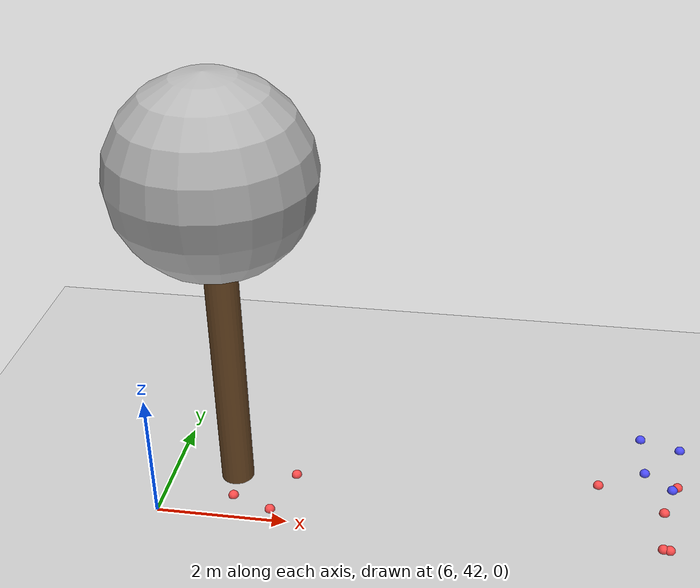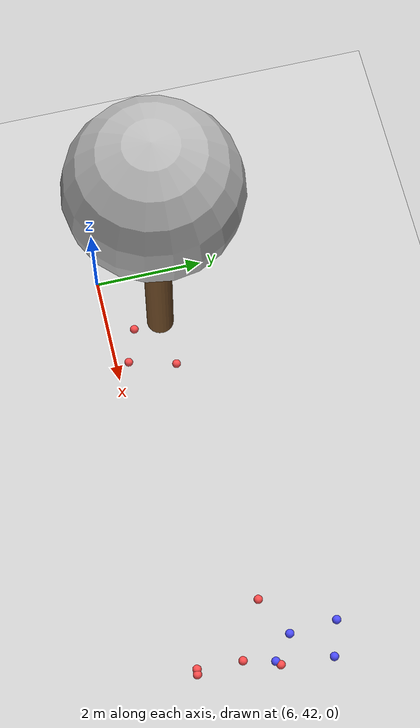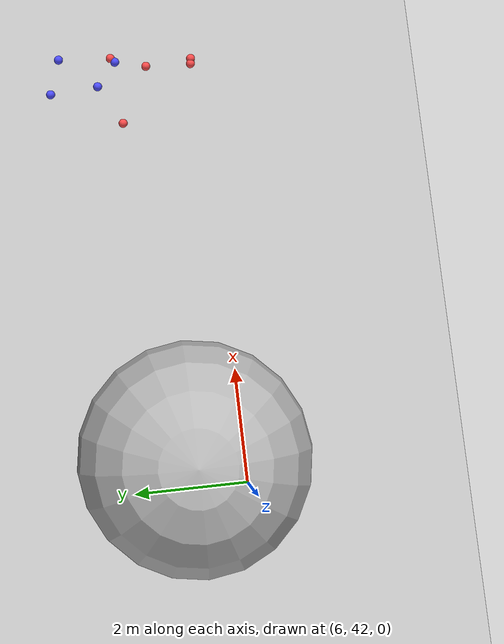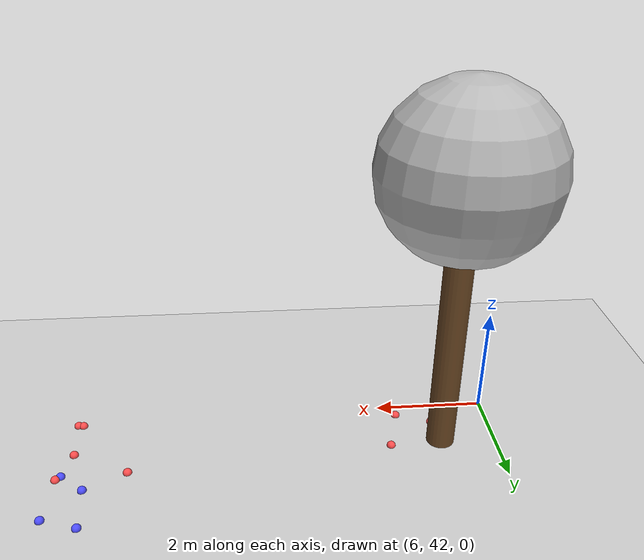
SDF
<sdf version="1.7">
 <world name="default">
  <model name="ground_plane">
   <static>1</static>
   <link name="link">
    <collision name="collision">
     <geometry><plane><normal>0 0 1</normal><size>100 100</size></plane></geometry>
     <surface>
      <contact><collide_bitmask>65535</collide_bitmask></contact>
      <friction><ode><mu>100</mu><mu2>50</mu2></ode></friction>
     </surface>
    </collision>
    <visual name="visual">
     <cast_shadows>0</cast_shadows>
     <geometry><plane><normal>0 0 1</normal><size>100 100</size></plane></geometry>
     <material>
      <script><uri>file://media/materials/scripts/gazebo.material</uri><name>Gazebo/Grey</name></script>
     </material>
    </visual>
   </link>
  </model>
  <model name="tree_simple_9">
   <static>1</static>
   <link name="link">
    <pose>0 0 0.1 0 -0 0</pose>
    <inertial>
     <mass>666</mass>
     <inertia>
      <ixx>0.0861167</ixx>
      <ixy>0</ixy>
      <ixz>0</ixz>
      <iyy>0.0861167</iyy>
      <iyz>0</iyz>
      <izz>0.0861167</izz>
     </inertia>
    </inertial>
    <collision name="collision_trunk">
     <pose>0 0 2 0 -0 0</pose>
     <geometry><cylinder><radius>0.25</radius><length>4</length></cylinder></geometry>
     <surface>
      <contact>
       <poissons_ratio>0.347</poissons_ratio>
       <elastic_modulus>8.8e+09</elastic_modulus>
       <ode><kp>100000</kp><kd>100</kd><max_vel>100</max_vel><min_depth>0.001</min_depth></ode>
      </contact>
      <friction>
       <torsional>
        <coefficient>1</coefficient>
        <use_patch_radius>0</use_patch_radius>
        <surface_radius>0.01</surface_radius>
       </torsional>
      </friction>
     </surface>
    </collision>
    <collision name="collision_treetop">
     <pose>0 0 5.2 0 -0 0</pose>
     <geometry><sphere><radius>1.5</radius></sphere></geometry>
     <surface>
      <contact>
       <poissons_ratio>0.347</poissons_ratio>
       <elastic_modulus>8.8e+09</elastic_modulus>
       <ode><kp>100000</kp><kd>100</kd><max_vel>100</max_vel><min_depth>0.001</min_depth></ode>
      </contact>
      <friction>
       <torsional>
        <coefficient>1</coefficient>
        <use_patch_radius>0</use_patch_radius>
        <surface_radius>0.01</surface_radius>
       </torsional>
      </friction>
     </surface>
    </collision>
    <visual name="trunk">
     <pose>0 0 2 0 -0 0</pose>
     <geometry><cylinder><radius>0.25</radius><length>4</length></cylinder></geometry>
     <material>
      <script>
       <uri>model://tree_simple/scripts</uri>
       <uri>model://tree_simple/materials/textures</uri>
       <name>TreeSimple/Trunk</name>
      </script>
     </material>
    </visual>
    <visual name="treetop">
     <pose>0 0 5.2 0 -0 0</pose>
     <geometry><sphere><radius>1.5</radius></sphere></geometry>
     <material>
      <script>
       <uri>model://tree_simple/scripts</uri>
       <uri>model://tree_simple/materials/textures</uri>
       <name>TreeSimple/Treetop</name>
      </script>
     </material>
    </visual>
   </link>
   <pose>7 43 -0.1 0 -0 0</pose>
  </model>
  <model name="seed_blue_22">
   <link name="link">
    <inertial>
     <mass>1</mass>
     <inertia><ixx>0.1</ixx><ixy>0</ixy><ixz>0</ixz><iyy>0.1</iyy><iyz>0</iyz><izz>0.1</izz></inertia>
    </inertial>
    <visual name="visual">
     <geometry><sphere><radius>0.08</radius></sphere></geometry>
     <material>
      <script><name>Gazebo/Grey</name><uri>file://media/materials/scripts/gazebo.material</uri></script>
      <shader type="pixel"><normal_map>__default__</normal_map></shader>
      <ambient>0.3 0.3 1 1</ambient>
      <diffuse>0.7 0.7 0.7 1</diffuse>
      <specular>0.01 0.01 0.01 1</specular>
      <emissive>0 0 0 1</emissive>
     </material>
    </visual>
    <collision name="collision">
     <geometry><sphere><radius>0.0005</radius></sphere></geometry>
     <surface>
      <friction>
       <ode><mu>1</mu><mu2>1</mu2><fdir1>0 0 0</fdir1><slip1>0</slip1><slip2>0</slip2></ode>
       <torsional>
        <coefficient>1</coefficient>
        <patch_radius>0</patch_radius>
        <surface_radius>0</surface_radius>
        <use_patch_radius>1</use_patch_radius>
        <ode><slip>0</slip></ode>
       </torsional>
      </friction>
      <bounce><restitution_coefficient>0</restitution_coefficient><threshold>1e+06</threshold></bounce>
      <contact>
       <collide_without_contact>0</collide_without_contact>
       <collide_without_contact_bitmask>1</collide_without_contact_bitmask>
       <collide_bitmask>1</collide_bitmask>
       <ode>
        <soft_cfm>0</soft_cfm>
        <soft_erp>0.2</soft_erp>
        <kp>1e+13</kp>
        <kd>1</kd>
        <max_vel>0.01</max_vel>
        <min_depth>0</min_depth>
       </ode>
       <bullet>
        <split_impulse>1</split_impulse>
        <split_impulse_penetration_threshold>-0.01</split_impulse_penetration_threshold>
        <soft_cfm>0</soft_cfm>
        <soft_erp>0.2</soft_erp>
        <kp>1e+13</kp>
        <kd>1</kd>
       </bullet>
      </contact>
     </surface>
    </collision>
   </link>
   <static>0</static>
   <pose>13.3007 44.7427 0.0005 0 -0 0</pose>
  </model>
  <model name="seed_blue_23">
   <link name="link">
    <inertial>
     <mass>1</mass>
     <inertia><ixx>0.1</ixx><ixy>0</ixy><ixz>0</ixz><iyy>0.1</iyy><iyz>0</iyz><izz>0.1</izz></inertia>
    </inertial>
    <visual name="visual">
     <geometry><sphere><radius>0.08</radius></sphere></geometry>
     <material>
      <script><name>Gazebo/Grey</name><uri>file://media/materials/scripts/gazebo.material</uri></script>
      <shader type="pixel"><normal_map>__default__</normal_map></shader>
      <ambient>0.3 0.3 1 1</ambient>
      <diffuse>0.7 0.7 0.7 1</diffuse>
      <specular>0.01 0.01 0.01 1</specular>
      <emissive>0 0 0 1</emissive>
     </material>
    </visual>
    <collision name="collision">
     <geometry><sphere><radius>0.0005</radius></sphere></geometry>
     <surface>
      <friction>
       <ode><mu>1</mu><mu2>1</mu2><fdir1>0 0 0</fdir1><slip1>0</slip1><slip2>0</slip2></ode>
       <torsional>
        <coefficient>1</coefficient>
        <patch_radius>0</patch_radius>
        <surface_radius>0</surface_radius>
        <use_patch_radius>1</use_patch_radius>
        <ode><slip>0</slip></ode>
       </torsional>
      </friction>
      <bounce><restitution_coefficient>0</restitution_coefficient><threshold>1e+06</threshold></bounce>
      <contact>
       <collide_without_contact>0</collide_without_contact>
       <collide_without_contact_bitmask>1</collide_without_contact_bitmask>
       <collide_bitmask>1</collide_bitmask>
       <ode>
        <soft_cfm>0</soft_cfm>
        <soft_erp>0.2</soft_erp>
        <kp>1e+13</kp>
        <kd>1</kd>
        <max_vel>0.01</max_vel>
        <min_depth>0</min_depth>
       </ode>
       <bullet>
        <split_impulse>1</split_impulse>
        <split_impulse_penetration_threshold>-0.01</split_impulse_penetration_threshold>
        <soft_cfm>0</soft_cfm>
        <soft_erp>0.2</soft_erp>
        <kp>1e+13</kp>
        <kd>1</kd>
       </bullet>
      </contact>
     </surface>
    </collision>
   </link>
   <static>0</static>
   <pose>13.9245 44.5346 0.0005 0 -0 0</pose>
  </model>
  <model name="seed_blue_25">
   <link name="link">
    <inertial>
     <mass>1</mass>
     <inertia><ixx>0.1</ixx><ixy>0</ixy><ixz>0</ixz><iyy>0.1</iyy><iyz>0</iyz><izz>0.1</izz></inertia>
    </inertial>
    <visual name="visual">
     <geometry><sphere><radius>0.08</radius></sphere></geometry>
     <material>
      <script><name>Gazebo/Grey</name><uri>file://media/materials/scripts/gazebo.material</uri></script>
      <shader type="pixel"><normal_map>__default__</normal_map></shader>
      <ambient>0.3 0.3 1 1</ambient>
      <diffuse>0.7 0.7 0.7 1</diffuse>
      <specular>0.01 0.01 0.01 1</specular>
      <emissive>0 0 0 1</emissive>
     </material>
    </visual>
    <collision name="collision">
     <geometry><sphere><radius>0.0005</radius></sphere></geometry>
     <surface>
      <friction>
       <ode><mu>1</mu><mu2>1</mu2><fdir1>0 0 0</fdir1><slip1>0</slip1><slip2>0</slip2></ode>
       <torsional>
        <coefficient>1</coefficient>
        <patch_radius>0</patch_radius>
        <surface_radius>0</surface_radius>
        <use_patch_radius>1</use_patch_radius>
        <ode><slip>0</slip></ode>
       </torsional>
      </friction>
      <bounce><restitution_coefficient>0</restitution_coefficient><threshold>1e+06</threshold></bounce>
      <contact>
       <collide_without_contact>0</collide_without_contact>
       <collide_without_contact_bitmask>1</collide_without_contact_bitmask>
       <collide_bitmask>1</collide_bitmask>
       <ode>
        <soft_cfm>0</soft_cfm>
        <soft_erp>0.2</soft_erp>
        <kp>1e+13</kp>
        <kd>1</kd>
        <max_vel>0.01</max_vel>
        <min_depth>0</min_depth>
       </ode>
       <bullet>
        <split_impulse>1</split_impulse>
        <split_impulse_penetration_threshold>-0.01</split_impulse_penetration_threshold>
        <soft_cfm>0</soft_cfm>
        <soft_erp>0.2</soft_erp>
        <kp>1e+13</kp>
        <kd>1</kd>
       </bullet>
      </contact>
     </surface>
    </collision>
   </link>
   <static>0</static>
   <pose>13.3534 43.8782 0.0005 0 -0 0</pose>
  </model>
  <model name="seed_blue_27">
   <link name="link">
    <inertial>
     <mass>1</mass>
     <inertia><ixx>0.1</ixx><ixy>0</ixy><ixz>0</ixz><iyy>0.1</iyy><iyz>0</iyz><izz>0.1</izz></inertia>
    </inertial>
    <visual name="visual">
     <geometry><sphere><radius>0.08</radius></sphere></geometry>
     <material>
      <script><name>Gazebo/Grey</name><uri>file://media/materials/scripts/gazebo.material</uri></script>
      <shader type="pixel"><normal_map>__default__</normal_map></shader>
      <ambient>0.3 0.3 1 1</ambient>
      <diffuse>0.7 0.7 0.7 1</diffuse>
      <specular>0.01 0.01 0.01 1</specular>
      <emissive>0 0 0 1</emissive>
     </material>
    </visual>
    <collision name="collision">
     <geometry><sphere><radius>0.0005</radius></sphere></geometry>
     <surface>
      <friction>
       <ode><mu>1</mu><mu2>1</mu2><fdir1>0 0 0</fdir1><slip1>0</slip1><slip2>0</slip2></ode>
       <torsional>
        <coefficient>1</coefficient>
        <patch_radius>0</patch_radius>
        <surface_radius>0</surface_radius>
        <use_patch_radius>1</use_patch_radius>
        <ode><slip>0</slip></ode>
       </torsional>
      </friction>
      <bounce><restitution_coefficient>0</restitution_coefficient><threshold>1e+06</threshold></bounce>
      <contact>
       <collide_without_contact>0</collide_without_contact>
       <collide_without_contact_bitmask>1</collide_without_contact_bitmask>
       <collide_bitmask>1</collide_bitmask>
       <ode>
        <soft_cfm>0</soft_cfm>
        <soft_erp>0.2</soft_erp>
        <kp>1e+13</kp>
        <kd>1</kd>
        <max_vel>0.01</max_vel>
        <min_depth>0</min_depth>
       </ode>
       <bullet>
        <split_impulse>1</split_impulse>
        <split_impulse_penetration_threshold>-0.01</split_impulse_penetration_threshold>
        <soft_cfm>0</soft_cfm>
        <soft_erp>0.2</soft_erp>
        <kp>1e+13</kp>
        <kd>1</kd>
       </bullet>
      </contact>
     </surface>
    </collision>
   </link>
   <static>0</static>
   <pose>13.773 43.5207 0.0005 0 -0 0</pose>
  </model>
  <model name="seed_red_31">
   <link name="link">
    <inertial>
     <mass>1</mass>
     <inertia><ixx>0.1</ixx><ixy>0</ixy><ixz>0</ixz><iyy>0.1</iyy><iyz>0</iyz><izz>0.1</izz></inertia>
    </inertial>
    <visual name="visual">
     <geometry><sphere><radius>0.08</radius></sphere></geometry>
     <material>
      <script><name>Gazebo/Grey</name><uri>file://media/materials/scripts/gazebo.material</uri></script>
      <shader type="pixel"><normal_map>__default__</normal_map></shader>
      <ambient>1 0.3 0.3 1</ambient>
      <diffuse>0.7 0.7 0.7 1</diffuse>
      <specular>0.01 0.01 0.01 1</specular>
      <emissive>0 0 0 1</emissive>
     </material>
    </visual>
    <collision name="collision">
     <geometry><sphere><radius>0.0005</radius></sphere></geometry>
     <surface>
      <friction>
       <ode><mu>1</mu><mu2>1</mu2><fdir1>0 0 0</fdir1><slip1>0</slip1><slip2>0</slip2></ode>
       <torsional>
        <coefficient>1</coefficient>
        <patch_radius>0</patch_radius>
        <surface_radius>0</surface_radius>
        <use_patch_radius>1</use_patch_radius>
        <ode><slip>0</slip></ode>
       </torsional>
      </friction>
      <bounce><restitution_coefficient>0</restitution_coefficient><threshold>1e+06</threshold></bounce>
      <contact>
       <collide_without_contact>0</collide_without_contact>
       <collide_without_contact_bitmask>1</collide_without_contact_bitmask>
       <collide_bitmask>1</collide_bitmask>
       <ode>
        <soft_cfm>0</soft_cfm>
        <soft_erp>0.2</soft_erp>
        <kp>1e+13</kp>
        <kd>1</kd>
        <max_vel>0.01</max_vel>
        <min_depth>0</min_depth>
       </ode>
       <bullet>
        <split_impulse>1</split_impulse>
        <split_impulse_penetration_threshold>-0.01</split_impulse_penetration_threshold>
        <soft_cfm>0</soft_cfm>
        <soft_erp>0.2</soft_erp>
        <kp>1e+13</kp>
        <kd>1</kd>
       </bullet>
      </contact>
     </surface>
    </collision>
   </link>
   <static>0</static>
   <pose>7.92107 43.1009 0.0005 0 -0 0</pose>
  </model>
  <model name="seed_red_32">
   <link name="link">
    <inertial>
     <mass>1</mass>
     <inertia><ixx>0.1</ixx><ixy>0</ixy><ixz>0</ixz><iyy>0.1</iyy><iyz>0</iyz><izz>0.1</izz></inertia>
    </inertial>
    <visual name="visual">
     <geometry><sphere><radius>0.08</radius></sphere></geometry>
     <material>
      <script><name>Gazebo/Grey</name><uri>file://media/materials/scripts/gazebo.material</uri></script>
      <shader type="pixel"><normal_map>__default__</normal_map></shader>
      <ambient>1 0.3 0.3 1</ambient>
      <diffuse>0.7 0.7 0.7 1</diffuse>
      <specular>0.01 0.01 0.01 1</specular>
      <emissive>0 0 0 1</emissive>
     </material>
    </visual>
    <collision name="collision">
     <geometry><sphere><radius>0.0005</radius></sphere></geometry>
     <surface>
      <friction>
       <ode><mu>1</mu><mu2>1</mu2><fdir1>0 0 0</fdir1><slip1>0</slip1><slip2>0</slip2></ode>
       <torsional>
        <coefficient>1</coefficient>
        <patch_radius>0</patch_radius>
        <surface_radius>0</surface_radius>
        <use_patch_radius>1</use_patch_radius>
        <ode><slip>0</slip></ode>
       </torsional>
      </friction>
      <bounce><restitution_coefficient>0</restitution_coefficient><threshold>1e+06</threshold></bounce>
      <contact>
       <collide_without_contact>0</collide_without_contact>
       <collide_without_contact_bitmask>1</collide_without_contact_bitmask>
       <collide_bitmask>1</collide_bitmask>
       <ode>
        <soft_cfm>0</soft_cfm>
        <soft_erp>0.2</soft_erp>
        <kp>1e+13</kp>
        <kd>1</kd>
        <max_vel>0.01</max_vel>
        <min_depth>0</min_depth>
       </ode>
       <bullet>
        <split_impulse>1</split_impulse>
        <split_impulse_penetration_threshold>-0.01</split_impulse_penetration_threshold>
        <soft_cfm>0</soft_cfm>
        <soft_erp>0.2</soft_erp>
        <kp>1e+13</kp>
        <kd>1</kd>
       </bullet>
      </contact>
     </surface>
    </collision>
   </link>
   <static>0</static>
   <pose>7.05987 42.4848 0.0005 0 -0 0</pose>
  </model>
  <model name="seed_red_33">
   <link name="link">
    <inertial>
     <mass>1</mass>
     <inertia><ixx>0.1</ixx><ixy>0</ixy><ixz>0</ixz><iyy>0.1</iyy><iyz>0</iyz><izz>0.1</izz></inertia>
    </inertial>
    <visual name="visual">
     <geometry><sphere><radius>0.08</radius></sphere></geometry>
     <material>
      <script><name>Gazebo/Grey</name><uri>file://media/materials/scripts/gazebo.material</uri></script>
      <shader type="pixel"><normal_map>__default__</normal_map></shader>
      <ambient>1 0.3 0.3 1</ambient>
      <diffuse>0.7 0.7 0.7 1</diffuse>
      <specular>0.01 0.01 0.01 1</specular>
      <emissive>0 0 0 1</emissive>
     </material>
    </visual>
    <collision name="collision">
     <geometry><sphere><radius>0.0005</radius></sphere></geometry>
     <surface>
      <friction>
       <ode><mu>1</mu><mu2>1</mu2><fdir1>0 0 0</fdir1><slip1>0</slip1><slip2>0</slip2></ode>
       <torsional>
        <coefficient>1</coefficient>
        <patch_radius>0</patch_radius>
        <surface_radius>0</surface_radius>
        <use_patch_radius>1</use_patch_radius>
        <ode><slip>0</slip></ode>
       </torsional>
      </friction>
      <bounce><restitution_coefficient>0</restitution_coefficient><threshold>1e+06</threshold></bounce>
      <contact>
       <collide_without_contact>0</collide_without_contact>
       <collide_without_contact_bitmask>1</collide_without_contact_bitmask>
       <collide_bitmask>1</collide_bitmask>
       <ode>
        <soft_cfm>0</soft_cfm>
        <soft_erp>0.2</soft_erp>
        <kp>1e+13</kp>
        <kd>1</kd>
        <max_vel>0.01</max_vel>
        <min_depth>0</min_depth>
       </ode>
       <bullet>
        <split_impulse>1</split_impulse>
        <split_impulse_penetration_threshold>-0.01</split_impulse_penetration_threshold>
        <soft_cfm>0</soft_cfm>
        <soft_erp>0.2</soft_erp>
        <kp>1e+13</kp>
        <kd>1</kd>
       </bullet>
      </contact>
     </surface>
    </collision>
   </link>
   <static>0</static>
   <pose>7.68918 42.2411 0.0005 0 -0 0</pose>
  </model>
  <model name="seed_red_38">
   <link name="link">
    <inertial>
     <mass>1</mass>
     <inertia><ixx>0.1</ixx><ixy>0</ixy><ixz>0</ixz><iyy>0.1</iyy><iyz>0</iyz><izz>0.1</izz></inertia>
    </inertial>
    <visual name="visual">
     <geometry><sphere><radius>0.08</radius></sphere></geometry>
     <material>
      <script><name>Gazebo/Grey</name><uri>file://media/materials/scripts/gazebo.material</uri></script>
      <shader type="pixel"><normal_map>__default__</normal_map></shader>
      <ambient>1 0.3 0.3 1</ambient>
      <diffuse>0.7 0.7 0.7 1</diffuse>
      <specular>0.01 0.01 0.01 1</specular>
      <emissive>0 0 0 1</emissive>
     </material>
    </visual>
    <collision name="collision">
     <geometry><sphere><radius>0.0005</radius></sphere></geometry>
     <surface>
      <friction>
       <ode><mu>1</mu><mu2>1</mu2><fdir1>0 0 0</fdir1><slip1>0</slip1><slip2>0</slip2></ode>
       <torsional>
        <coefficient>1</coefficient>
        <patch_radius>0</patch_radius>
        <surface_radius>0</surface_radius>
        <use_patch_radius>1</use_patch_radius>
        <ode><slip>0</slip></ode>
       </torsional>
      </friction>
      <bounce><restitution_coefficient>0</restitution_coefficient><threshold>1e+06</threshold></bounce>
      <contact>
       <collide_without_contact>0</collide_without_contact>
       <collide_without_contact_bitmask>1</collide_without_contact_bitmask>
       <collide_bitmask>1</collide_bitmask>
       <ode>
        <soft_cfm>0</soft_cfm>
        <soft_erp>0.2</soft_erp>
        <kp>1e+13</kp>
        <kd>1</kd>
        <max_vel>0.01</max_vel>
        <min_depth>0</min_depth>
       </ode>
       <bullet>
        <split_impulse>1</split_impulse>
        <split_impulse_penetration_threshold>-0.01</split_impulse_penetration_threshold>
        <soft_cfm>0</soft_cfm>
        <soft_erp>0.2</soft_erp>
        <kp>1e+13</kp>
        <kd>1</kd>
       </bullet>
      </contact>
     </surface>
    </collision>
   </link>
   <static>0</static>
   <pose>13.633 42.9664 0.0005 0 -0 0</pose>
  </model>
  <model name="seed_red_39">
   <link name="link">
    <inertial>
     <mass>1</mass>
     <inertia><ixx>0.1</ixx><ixy>0</ixy><ixz>0</ixz><iyy>0.1</iyy><iyz>0</iyz><izz>0.1</izz></inertia>
    </inertial>
    <visual name="visual">
     <geometry><sphere><radius>0.08</radius></sphere></geometry>
     <material>
      <script><name>Gazebo/Grey</name><uri>file://media/materials/scripts/gazebo.material</uri></script>
      <shader type="pixel"><normal_map>__default__</normal_map></shader>
      <ambient>1 0.3 0.3 1</ambient>
      <diffuse>0.7 0.7 0.7 1</diffuse>
      <specular>0.01 0.01 0.01 1</specular>
      <emissive>0 0 0 1</emissive>
     </material>
    </visual>
    <collision name="collision">
     <geometry><sphere><radius>0.0005</radius></sphere></geometry>
     <surface>
      <friction>
       <ode><mu>1</mu><mu2>1</mu2><fdir1>0 0 0</fdir1><slip1>0</slip1><slip2>0</slip2></ode>
       <torsional>
        <coefficient>1</coefficient>
        <patch_radius>0</patch_radius>
        <surface_radius>0</surface_radius>
        <use_patch_radius>1</use_patch_radius>
        <ode><slip>0</slip></ode>
       </torsional>
      </friction>
      <bounce><restitution_coefficient>0</restitution_coefficient><threshold>1e+06</threshold></bounce>
      <contact>
       <collide_without_contact>0</collide_without_contact>
       <collide_without_contact_bitmask>1</collide_without_contact_bitmask>
       <collide_bitmask>1</collide_bitmask>
       <ode>
        <soft_cfm>0</soft_cfm>
        <soft_erp>0.2</soft_erp>
        <kp>1e+13</kp>
        <kd>1</kd>
        <max_vel>0.01</max_vel>
        <min_depth>0</min_depth>
       </ode>
       <bullet>
        <split_impulse>1</split_impulse>
        <split_impulse_penetration_threshold>-0.01</split_impulse_penetration_threshold>
        <soft_cfm>0</soft_cfm>
        <soft_erp>0.2</soft_erp>
        <kp>1e+13</kp>
        <kd>1</kd>
       </bullet>
      </contact>
     </surface>
    </collision>
   </link>
   <static>0</static>
   <pose>12.6309 43.49 0.0005 0 -0 0</pose>
  </model>
  <model name="seed_red_41">
   <link name="link">
    <inertial>
     <mass>1</mass>
     <inertia><ixx>0.1</ixx><ixy>0</ixy><ixz>0</ixz><iyy>0.1</iyy><iyz>0</iyz><izz>0.1</izz></inertia>
    </inertial>
    <visual name="visual">
     <geometry><sphere><radius>0.08</radius></sphere></geometry>
     <material>
      <script><name>Gazebo/Grey</name><uri>file://media/materials/scripts/gazebo.material</uri></script>
      <shader type="pixel"><normal_map>__default__</normal_map></shader>
      <ambient>1 0.3 0.3 1</ambient>
      <diffuse>0.7 0.7 0.7 1</diffuse>
      <specular>0.01 0.01 0.01 1</specular>
      <emissive>0 0 0 1</emissive>
     </material>
    </visual>
    <collision name="collision">
     <geometry><sphere><radius>0.0005</radius></sphere></geometry>
     <surface>
      <friction>
       <ode><mu>1</mu><mu2>1</mu2><fdir1>0 0 0</fdir1><slip1>0</slip1><slip2>0</slip2></ode>
       <torsional>
        <coefficient>1</coefficient>
        <patch_radius>0</patch_radius>
        <surface_radius>0</surface_radius>
        <use_patch_radius>1</use_patch_radius>
        <ode><slip>0</slip></ode>
       </torsional>
      </friction>
      <bounce><restitution_coefficient>0</restitution_coefficient><threshold>1e+06</threshold></bounce>
      <contact>
       <collide_without_contact>0</collide_without_contact>
       <collide_without_contact_bitmask>1</collide_without_contact_bitmask>
       <collide_bitmask>1</collide_bitmask>
       <ode>
        <soft_cfm>0</soft_cfm>
        <soft_erp>0.2</soft_erp>
        <kp>1e+13</kp>
        <kd>1</kd>
        <max_vel>0.01</max_vel>
        <min_depth>0</min_depth>
       </ode>
       <bullet>
        <split_impulse>1</split_impulse>
        <split_impulse_penetration_threshold>-0.01</split_impulse_penetration_threshold>
        <soft_cfm>0</soft_cfm>
        <soft_erp>0.2</soft_erp>
        <kp>1e+13</kp>
        <kd>1</kd>
       </bullet>
      </contact>
     </surface>
    </collision>
   </link>
   <static>0</static>
   <pose>13.8512 43.5936 0.0005 0 -0 0</pose>
  </model>
  <model name="seed_red_42">
   <link name="link">
    <inertial>
     <mass>1</mass>
     <inertia><ixx>0.1</ixx><ixy>0</ixy><ixz>0</ixz><iyy>0.1</iyy><iyz>0</iyz><izz>0.1</izz></inertia>
    </inertial>
    <visual name="visual">
     <geometry><sphere><radius>0.08</radius></sphere></geometry>
     <material>
      <script><name>Gazebo/Grey</name><uri>file://media/materials/scripts/gazebo.material</uri></script>
      <shader type="pixel"><normal_map>__default__</normal_map></shader>
      <ambient>1 0.3 0.3 1</ambient>
      <diffuse>0.7 0.7 0.7 1</diffuse>
      <specular>0.01 0.01 0.01 1</specular>
      <emissive>0 0 0 1</emissive>
     </material>
    </visual>
    <collision name="collision">
     <geometry><sphere><radius>0.0005</radius></sphere></geometry>
     <surface>
      <friction>
       <ode><mu>1</mu><mu2>1</mu2><fdir1>0 0 0</fdir1><slip1>0</slip1><slip2>0</slip2></ode>
       <torsional>
        <coefficient>1</coefficient>
        <patch_radius>0</patch_radius>
        <surface_radius>0</surface_radius>
        <use_patch_radius>1</use_patch_radius>
        <ode><slip>0</slip></ode>
       </torsional>
      </friction>
      <bounce><restitution_coefficient>0</restitution_coefficient><threshold>1e+06</threshold></bounce>
      <contact>
       <collide_without_contact>0</collide_without_contact>
       <collide_without_contact_bitmask>1</collide_without_contact_bitmask>
       <collide_bitmask>1</collide_bitmask>
       <ode>
        <soft_cfm>0</soft_cfm>
        <soft_erp>0.2</soft_erp>
        <kp>1e+13</kp>
        <kd>1</kd>
        <max_vel>0.01</max_vel>
        <min_depth>0</min_depth>
       </ode>
       <bullet>
        <split_impulse>1</split_impulse>
        <split_impulse_penetration_threshold>-0.01</split_impulse_penetration_threshold>
        <soft_cfm>0</soft_cfm>
        <soft_erp>0.2</soft_erp>
        <kp>1e+13</kp>
        <kd>1</kd>
       </bullet>
      </contact>
     </surface>
    </collision>
   </link>
   <static>0</static>
   <pose>13.5933 42.1524 0.0005 0 -0 0</pose>
  </model>
  <model name="seed_red_44">
   <link name="link">
    <inertial>
     <mass>1</mass>
     <inertia><ixx>0.1</ixx><ixy>0</ixy><ixz>0</ixz><iyy>0.1</iyy><iyz>0</iyz><izz>0.1</izz></inertia>
    </inertial>
    <visual name="visual">
     <geometry><sphere><radius>0.08</radius></sphere></geometry>
     <material>
      <script><name>Gazebo/Grey</name><uri>file://media/materials/scripts/gazebo.material</uri></script>
      <shader type="pixel"><normal_map>__default__</normal_map></shader>
      <ambient>1 0.3 0.3 1</ambient>
      <diffuse>0.7 0.7 0.7 1</diffuse>
      <specular>0.01 0.01 0.01 1</specular>
      <emissive>0 0 0 1</emissive>
     </material>
    </visual>
    <collision name="collision">
     <geometry><sphere><radius>0.0005</radius></sphere></geometry>
     <surface>
      <friction>
       <ode><mu>1</mu><mu2>1</mu2><fdir1>0 0 0</fdir1><slip1>0</slip1><slip2>0</slip2></ode>
       <torsional>
        <coefficient>1</coefficient>
        <patch_radius>0</patch_radius>
        <surface_radius>0</surface_radius>
        <use_patch_radius>1</use_patch_radius>
        <ode><slip>0</slip></ode>
       </torsional>
      </friction>
      <bounce><restitution_coefficient>0</restitution_coefficient><threshold>1e+06</threshold></bounce>
      <contact>
       <collide_without_contact>0</collide_without_contact>
       <collide_without_contact_bitmask>1</collide_without_contact_bitmask>
       <collide_bitmask>1</collide_bitmask>
       <ode>
        <soft_cfm>0</soft_cfm>
        <soft_erp>0.2</soft_erp>
        <kp>1e+13</kp>
        <kd>1</kd>
        <max_vel>0.01</max_vel>
        <min_depth>0</min_depth>
       </ode>
       <bullet>
        <split_impulse>1</split_impulse>
        <split_impulse_penetration_threshold>-0.01</split_impulse_penetration_threshold>
        <soft_cfm>0</soft_cfm>
        <soft_erp>0.2</soft_erp>
        <kp>1e+13</kp>
        <kd>1</kd>
       </bullet>
      </contact>
     </surface>
    </collision>
   </link>
   <static>0</static>
   <pose>13.6875 42.1396 0.0005 0 -0 0</pose>
  </model>
 </world>
</sdf>
